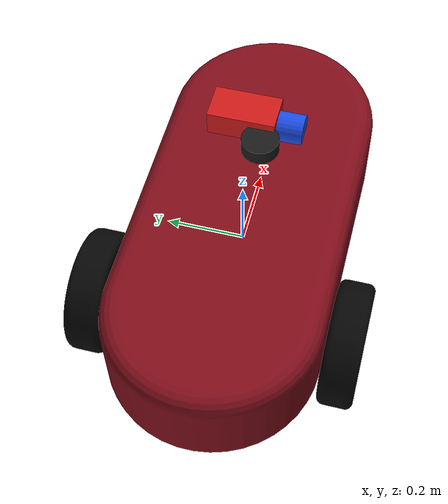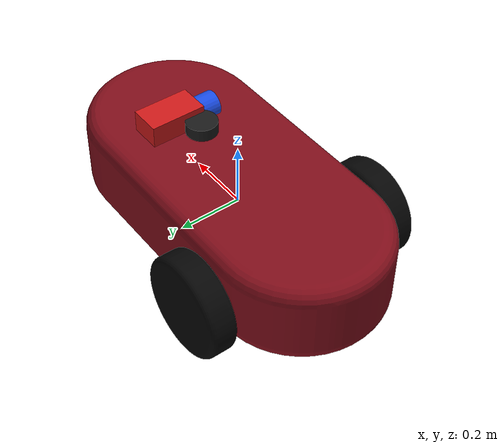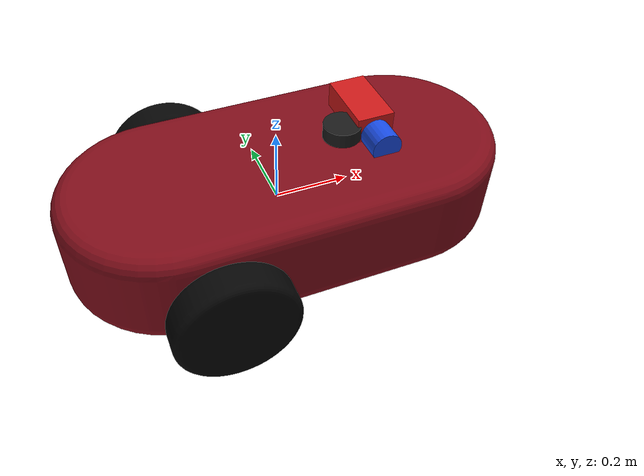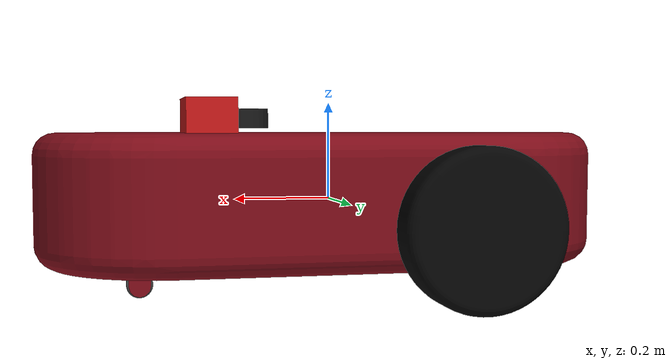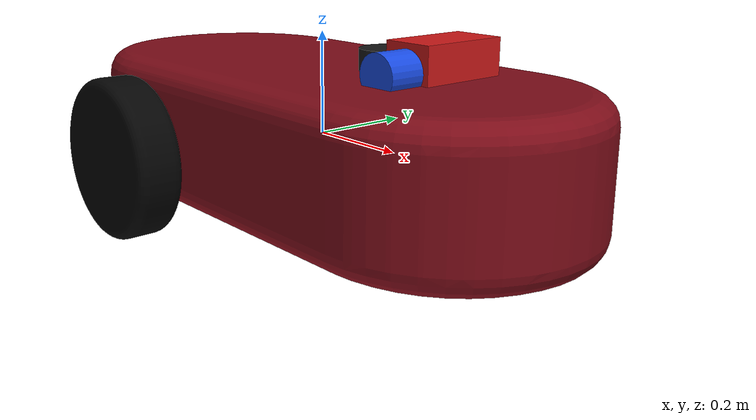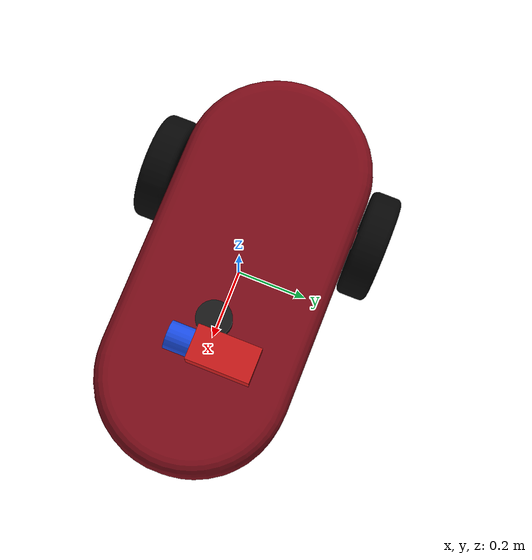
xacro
<?xml version="1.0" encoding="utf-8"?>
<robot xmlns:xacro="http://www.ros.org/wiki/xacro" name="rover">

  <!--        Properties              -->

  <xacro:property name="scale_factor" value="1.8"/>
  <xacro:property name="wheel_radius" value="${0.088 * scale_factor}"/>
  <xacro:property name="wheel_separation" value="${0.40126 * scale_factor}"/>

  <!--   Dummy root link              -->

  <link name="base_footprint"/>

  <joint name="base_footprint_joint" type="fixed">
    <origin xyz="0 0 0" rpy="0 0 0"/>
    <parent link="base_footprint"/>
    <child link="base_link"/>
  </joint>

  <!--      Base Link (YELLOW)        -->

  <link name="base_link">
    <inertial>
      <origin xyz="${0.010885 * scale_factor} 0 ${0.0020847 * scale_factor}" rpy="0 0 0"/>
      <mass value="25.988"/>
      <inertia
        ixx="0.22029" ixy="0" ixz="7.6472E-05"
        iyy="0.81067" iyz="0" izz="0.93602"/>
    </inertial>
    <visual>
      <origin xyz="0 0 0" rpy="0 0 0"/>
      <geometry>
        <mesh filename="package://rsn_p/meshes/base_link.STL" scale="${scale_factor} ${scale_factor} ${scale_factor}"/>
      </geometry>
      <material name="maroon">
        <color rgba="0.5 0.05 0.1 1"/>
      </material>
    </visual>
    <collision>
      <origin xyz="0 0 0" rpy="0 0 0"/>
      <geometry>
        <mesh filename="package://rsn_p/meshes/base_link.STL" scale="${scale_factor} ${scale_factor} ${scale_factor}"/>
      </geometry>
    </collision>
  </link>

  <gazebo reference="base_link">
    <visual>
      <material>
        <ambient>0.5 0.05 0.1 1</ambient>
        <diffuse>0.5 0.05 0.1 1</diffuse>
      </material>
    </visual>
  </gazebo>

  <!--     Right Wheel (Dark Gray)    -->

  <link name="right_wheel">
    <inertial>
      <origin xyz="0 ${0.021102 * scale_factor} 0" rpy="0 0 0"/>
      <mass value="1.1549"/>
      <inertia
        ixx="0.0024515" ixy="0" ixz="0"
        iyy="0.0044337" iyz="0" izz="0.0024515"/>
    </inertial>
    <visual>
      <origin xyz="0 0 0" rpy="0 0 0"/>
      <geometry>
        <mesh filename="package://rsn_p/meshes/right_wheel.STL" scale="${scale_factor} ${scale_factor} ${scale_factor}"/>
      </geometry>
      <material name="pitch_black">
        <color rgba="0.02 0.02 0.02 1"/>
      </material>
    </visual>
    <collision>
      <origin xyz="0 0 0" rpy="0 0 0"/>
      <geometry>
        <mesh filename="package://rsn_p/meshes/right_wheel.STL" scale="${scale_factor} ${scale_factor} ${scale_factor}"/>
      </geometry>
    </collision>
  </link>

  <joint name="right_joint" type="continuous">
    <origin xyz="${-0.12395 * scale_factor} ${-0.19876 * scale_factor} ${-0.022818 * scale_factor}" rpy="0 0 0"/>
    <parent link="base_link"/>
    <child link="right_wheel"/>
    <axis xyz="0 -1 0"/>
  </joint>

  <gazebo reference="right_wheel">
    <visual>
      <material>
        <ambient>0.02 0.02 0.02 1</ambient>
        <diffuse>0.02 0.02 0.02 1</diffuse>
      </material>
    </visual>
    <mu1>1.0</mu1>
    <mu2>1.0</mu2>
  </gazebo>

  <!--      Left Wheel (Dark Gray)    -->

  <link name="left_wheel">
    <inertial>
      <origin xyz="0 ${-0.024839 * scale_factor} 0" rpy="0 0 0"/>
      <mass value="1.1549"/>
      <inertia
        ixx="0.0024515" ixy="0" ixz="0"
        iyy="0.0044337" iyz="0" izz="0.0024515"/>
    </inertial>
    <visual>
      <origin xyz="0 0 0" rpy="0 0 0"/>
      <geometry>
        <mesh filename="package://rsn_p/meshes/left_wheel.STL" scale="${scale_factor} ${scale_factor} ${scale_factor}"/>
      </geometry>
      <material name="pitch_black"/>
    </visual>
    <collision>
      <origin xyz="0 0 0" rpy="0 0 0"/>
      <geometry>
        <mesh filename="package://rsn_p/meshes/left_wheel.STL" scale="${scale_factor} ${scale_factor} ${scale_factor}"/>
      </geometry>
    </collision>
  </link>

  <joint name="left_joint" type="continuous">
    <origin xyz="${-0.12395 * scale_factor} ${0.2025 * scale_factor} ${-0.022818 * scale_factor}" rpy="0 0 0"/>
    <parent link="base_link"/>
    <child link="left_wheel"/>
    <axis xyz="0 -1 0"/>
  </joint>

  <gazebo reference="left_wheel">
    <visual>
      <material>
        <ambient>0.02 0.02 0.02 1</ambient>
        <diffuse>0.02 0.02 0.02 1</diffuse>
      </material>
    </visual>
    <mu1>1.0</mu1>
    <mu2>1.0</mu2>
  </gazebo>

  <!--    Castor Wheel                -->

  <link name="castor_wheel">
    <inertial>
      <origin xyz="0 ${0.0125 * scale_factor} 0" rpy="0 0 0"/>
      <mass value="0.015472"/>
      <inertia
        ixx="1.6804E-06" ixy="0" ixz="0"
        iyy="1.8498E-06" iyz="0" izz="1.6804E-06"/>
    </inertial>
    <visual>
      <origin xyz="0 0 0" rpy="0 0 0"/>
      <geometry>
        <mesh filename="package://rsn_p/meshes/castor_wheel.STL" scale="${scale_factor} ${scale_factor} ${scale_factor}"/>
      </geometry>
      <material name="dark_gray"/>
    </visual>
    <collision>
      <origin xyz="0 0 0" rpy="0 0 0"/>
      <geometry>
        <mesh filename="package://rsn_p/meshes/castor_wheel.STL" scale="${scale_factor} ${scale_factor} ${scale_factor}"/>
      </geometry>
    </collision>
  </link>

  <joint name="caster_joint" type="continuous">
    <origin xyz="${0.22105 * scale_factor} ${-0.0125 * scale_factor} ${-0.095318 * scale_factor}" rpy="0 0 0"/>
    <parent link="base_link"/>
    <child link="castor_wheel"/>
    <axis xyz="0 -1 0"/>
  </joint>

  <gazebo reference="castor_wheel">
    <visual>
      <material>
        <ambient>0.02 0.02 0.02 1</ambient>
        <diffuse>0.02 0.02 0.02 1</diffuse>
      </material>
    </visual>
    <mu1>0.001</mu1>
    <mu2>0.001</mu2>
  </gazebo>

  <!--    Sensor Platform (top)       -->

  <link name="sensor_platform">
    <inertial>
      <origin xyz="0 0 0" rpy="0 0 0"/>
      <mass value="0.1"/>
      <inertia ixx="1e-4" ixy="0" ixz="0" iyy="1e-4" iyz="0" izz="1e-4"/>
    </inertial>
    <visual>
      <origin xyz="0 0 0" rpy="0 0 0"/>
      <geometry>
        <box size="0.30 0.40 0.05"/>
      </geometry>
      <material name="platform_color">
        <color rgba="0.3 0.3 0.3 1"/>
      </material>
    </visual>
  </link>

  <joint name="sensor_platform_joint" type="fixed">
    <origin xyz="${0.1 * scale_factor} 0 ${0.06 * scale_factor}" rpy="0 0 0"/>
    <parent link="base_link"/>
    <child link="sensor_platform"/>
  </joint>

  <gazebo reference="sensor_platform">
    <visual>
      <material>
        <ambient>0.2 0.2 0.2 1</ambient>
        <diffuse>0.2 0.2 0.2 1</diffuse>
      </material>
    </visual>
  </gazebo>

  <!--        IMU Sensor              -->

  <link name="imu_link">
    <inertial>
      <origin xyz="0 0 0" rpy="0 0 0"/>
      <mass value="0.01"/>
      <inertia ixx="1e-6" ixy="0" ixz="0" iyy="1e-6" iyz="0" izz="1e-6"/>
    </inertial>
  </link>

  <joint name="imu_joint" type="fixed">
    <origin xyz="0 0 0.03" rpy="0 0 0"/>
    <parent link="sensor_platform"/>
    <child link="imu_link"/>
  </joint>

  <gazebo reference="imu_link">
    <sensor name="imu_sensor" type="imu">
      <always_on>true</always_on>
      <update_rate>100</update_rate>
      <topic>imu</topic>
      <imu>
        <angular_velocity>
          <x><noise type="gaussian"><mean>0</mean><stddev>0.01</stddev></noise></x>
          <y><noise type="gaussian"><mean>0</mean><stddev>0.01</stddev></noise></y>
          <z><noise type="gaussian"><mean>0</mean><stddev>0.01</stddev></noise></z>
        </angular_velocity>
        <linear_acceleration>
          <x><noise type="gaussian"><mean>0</mean><stddev>0.1</stddev></noise></x>
          <y><noise type="gaussian"><mean>0</mean><stddev>0.1</stddev></noise></y>
          <z><noise type="gaussian"><mean>0</mean><stddev>0.1</stddev></noise></z>
        </linear_acceleration>
      </imu>
    </sensor>
  </gazebo>

  <!--      Camera Sensor (RED)       -->

  <link name="camera_link">
    <inertial>
      <origin xyz="0 0 0" rpy="0 0 0"/>
      <mass value="0.05"/>
      <inertia ixx="1e-6" ixy="0" ixz="0" iyy="1e-6" iyz="0" izz="1e-6"/>
    </inertial>
    <visual>
      <origin xyz="0 0 0" rpy="0 0 0"/>
      <geometry>
        <box size="0.10 0.18 0.10"/>
      </geometry>
      <material name="camera_color">
        <color rgba="0.8 0.1 0.1 1"/>
      </material>
    </visual>
    <collision>
      <origin xyz="0 0 0" rpy="0 0 0"/>
      <geometry>
        <box size="0.10 0.18 0.10"/>
      </geometry>
    </collision>
  </link>

  <!-- Camera on top-right of sensor platform -->
  <joint name="camera_joint" type="fixed">
    <origin xyz="0.08 0.06 0.05" rpy="0 0 0"/>
    <parent link="sensor_platform"/>
    <child link="camera_link"/>
  </joint>

  <!-- Optical frame (ROS camera convention: z forward, x right, y down) -->
  <link name="camera_optical_link"/>

  <joint name="camera_optical_joint" type="fixed">
    <origin xyz="0 0 0" rpy="${-pi/2} 0 ${-pi/2}"/>
    <parent link="camera_link"/>
    <child link="camera_optical_link"/>
  </joint>

  <gazebo reference="camera_link">
    <visual>
      <material>
        <ambient>0.8 0.1 0.1 1</ambient>
        <diffuse>0.8 0.1 0.1 1</diffuse>
      </material>
    </visual>
    <sensor name="camera" type="camera">
      <always_on>true</always_on>
      <update_rate>15</update_rate>
      <topic>camera</topic>
      <camera>
        <horizontal_fov>1.39626</horizontal_fov>
        <image>
          <width>800</width>
          <height>600</height>
          <format>R8G8B8</format>
        </image>
        <clip>
          <near>0.1</near>
          <far>15.0</far>
        </clip>
      </camera>
    </sensor>
  </gazebo>

  <!--   Ultrasonic Sensor (BLUE)     -->
  <!--  (simulated as 1-ray lidar)   -->

  <link name="ultrasonic_link">
    <inertial>
      <origin xyz="0 0 0" rpy="0 0 0"/>
      <mass value="0.01"/>
      <inertia ixx="1e-6" ixy="0" ixz="0" iyy="1e-6" iyz="0" izz="1e-6"/>
    </inertial>
    <visual>
      <origin xyz="0 0 0" rpy="${pi/2} 0 0"/>
      <geometry>
        <cylinder radius="0.04" length="0.08"/>
      </geometry>
      <material name="sensor_blue">
        <color rgba="0.1 0.3 0.9 1"/>
      </material>
    </visual>
    <collision>
      <origin xyz="0 0 0" rpy="${pi/2} 0 0"/>
      <geometry>
        <cylinder radius="0.04" length="0.08"/>
      </geometry>
    </collision>
  </link>

  <!-- Ultrasonic on top-left of sensor platform -->
  <joint name="ultrasonic_joint" type="fixed">
    <origin xyz="0.08 -0.06 0.05" rpy="0 0 0"/>
    <parent link="sensor_platform"/>
    <child link="ultrasonic_link"/>
  </joint>

  <gazebo reference="ultrasonic_link">
    <visual>
      <material>
        <ambient>0.1 0.3 0.9 1</ambient>
        <diffuse>0.1 0.3 0.9 1</diffuse>
      </material>
    </visual>
    <sensor name="ultrasonic" type="gpu_lidar">
      <always_on>true</always_on>
      <update_rate>10</update_rate>
      <topic>ultrasonic</topic>
      <lidar>
        <scan>
          <horizontal>
            <samples>1</samples>
            <resolution>1</resolution>
            <min_angle>-0.209</min_angle>
            <max_angle>0.209</max_angle>
          </horizontal>
        </scan>
        <range>
          <min>0.02</min>
          <max>4.0</max>
        </range>
      </lidar>
    </sensor>
  </gazebo>

  <!--   2D LiDAR (for AMCL only)    -->

  <link name="lidar_link">
    <inertial>
      <origin xyz="0 0 0" rpy="0 0 0"/>
      <mass value="0.1"/>
      <inertia ixx="1e-5" ixy="0" ixz="0" iyy="1e-5" iyz="0" izz="1e-5"/>
    </inertial>
    <visual>
      <origin xyz="0 0 0" rpy="0 0 0"/>
      <geometry>
        <cylinder radius="0.05" length="0.04"/>
      </geometry>
      <material name="lidar_black">
        <color rgba="0.1 0.1 0.1 1"/>
      </material>
    </visual>
  </link>

  <joint name="lidar_joint" type="fixed">
    <origin xyz="0 0 0.06" rpy="0 0 0"/>
    <parent link="sensor_platform"/>
    <child link="lidar_link"/>
  </joint>

  <gazebo reference="lidar_link">
    <visual>
      <material>
        <ambient>0.1 0.1 0.1 1</ambient>
        <diffuse>0.1 0.1 0.1 1</diffuse>
      </material>
    </visual>
    <sensor name="lidar" type="gpu_lidar">
      <always_on>true</always_on>
      <update_rate>10</update_rate>
      <topic>scan</topic>
      <lidar>
        <scan>
          <horizontal>
            <samples>360</samples>
            <resolution>1</resolution>
            <min_angle>-3.14159</min_angle>
            <max_angle>3.14159</max_angle>
          </horizontal>
        </scan>
        <range>
          <min>0.1</min>
          <max>12.0</max>
        </range>
      </lidar>
    </sensor>
  </gazebo>

  <!--   Gazebo System Plugins        -->

  <!-- Differential drive controller -->
  <gazebo>
    <plugin filename="gz-sim-diff-drive-system"
            name="gz::sim::systems::DiffDrive">
      <left_joint>left_joint</left_joint>
      <right_joint>right_joint</right_joint>
      <wheel_separation>${wheel_separation}</wheel_separation>
      <wheel_radius>${wheel_radius}</wheel_radius>
      <max_linear_acceleration>1.0</max_linear_acceleration>
      <max_angular_acceleration>2.0</max_angular_acceleration>
      <topic>cmd_vel</topic>
      <odom_topic>odom</odom_topic>
      <frame_id>odom</frame_id>
      <child_frame_id>base_footprint</child_frame_id>
      <odom_publish_frequency>30</odom_publish_frequency>
    </plugin>
  </gazebo>

  <!-- Sensor system -->
  <gazebo>
    <plugin filename="gz-sim-sensors-system"
            name="gz::sim::systems::Sensors">
      <render_engine>ogre</render_engine>
    </plugin>
  </gazebo>

  <!-- IMU system -->
  <gazebo>
    <plugin filename="gz-sim-imu-system"
            name="gz::sim::systems::Imu"/>
  </gazebo>

  <!-- Joint state publisher -->
  <gazebo>
    <plugin filename="gz-sim-joint-state-publisher-system"
            name="gz::sim::systems::JointStatePublisher"/>
  </gazebo>

  <!-- Pose publisher for ground truth -->
  <gazebo>
    <plugin filename="gz-sim-pose-publisher-system"
            name="gz::sim::systems::PosePublisher">
      <publish_link_pose>false</publish_link_pose>
      <publish_model_pose>true</publish_model_pose>
      <publish_nested_model_pose>false</publish_nested_model_pose>
      <update_frequency>10</update_frequency>
    </plugin>
  </gazebo>

</robot>
